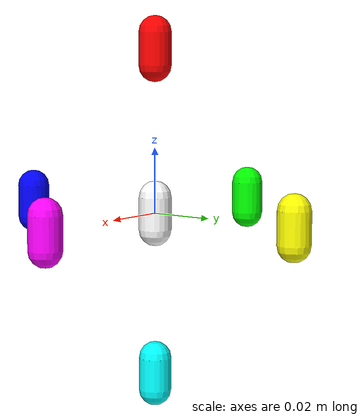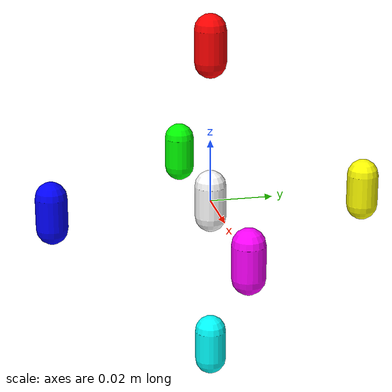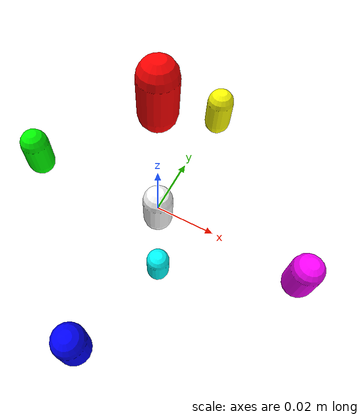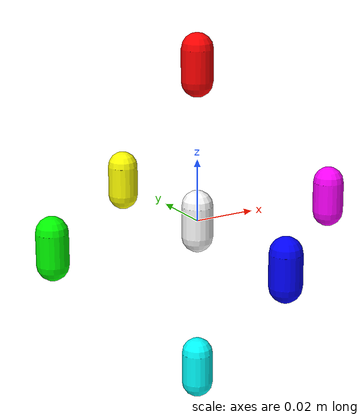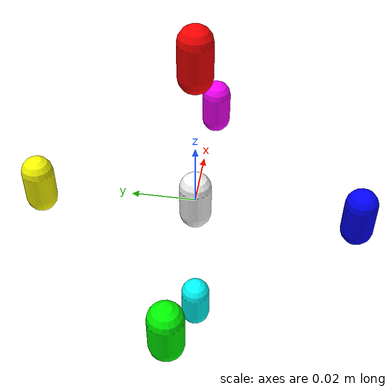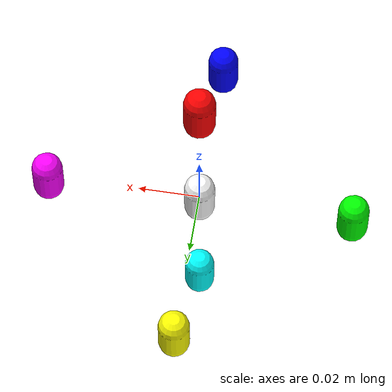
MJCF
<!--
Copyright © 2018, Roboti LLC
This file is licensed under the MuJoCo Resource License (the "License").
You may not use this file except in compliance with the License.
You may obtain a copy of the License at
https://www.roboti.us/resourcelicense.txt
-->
<mujoco>

    <statistic extent="2" meansize=".05"/>

    <option timestep="0.005" solver="Newton" iterations="30" tolerance="1e-10" jacobian="sparse" cone="pyramidal"/>

    <visual>
        <rgba haze="0.15 0.25 0.35 1"/>
        <quality shadowsize="2048"/>
		<global ipd="-0.068"/>
        <map stiffness="700" shadowscale="0.5" fogstart="10" fogend="15" zfar="40" haze="0.3"/>
    </visual>

    <asset>
        <texture type="skybox" builtin="gradient" rgb1="0 0 0" rgb2="0 0 0" width="512" height="512"/>
        <texture name="texplane" type="2d" builtin="checker" rgb1=".2 .3 .4" rgb2=".1 0.15 0.2"
            width="512" height="512" mark="cross" markrgb=".8 .8 .8"/>

        <material name="matplane" rgba="0 0 0 0"/>
		<material name="uppill" rgba="1 0 0 1"/>
		<material name="downpill" rgba="0 1 1 1"/>
		<material name="leftpill" rgba="0 1 0 1"/>
		<material name="rightpill" rgba="1 0 1 1"/>
		<material name="inpill" rgba="0 0 1 1"/>
		<material name="outpill" rgba="1 1 0 1"/>
		<material name="centerpill" rgba="1 1 1 1"/>
    </asset>

    <worldbody>
        <light directional="true" diffuse=".4 .4 .4" specular="0.1 0.1 0.1" pos="0 0 5.0" dir="0 0 -1" castshadow="false"/>
        <light directional="true" diffuse=".6 .6 .6" specular="0.2 0.2 0.2" pos="0 0 4" dir="0 0 -1"/>

        <geom name="ground" type="plane" size="0 0 1" pos="0 0 0" quat="1 0 0 0" material="matplane" condim="1"/>

        <body mocap="true" pos="0 0 0" zaxis="0 0 1">
            <geom type="capsule" size=".005 .005" material="centerpill" group="1" condim="1"/>
        </body>
		<body mocap="true" pos="0 0.05 0" zaxis="0 0 1">
            <geom type="capsule" size=".005 .005" material="outpill" group="1" condim="1"/>
        </body>
		<body mocap="true" pos="0 -0.05 0" zaxis="0 0 1">
            <geom type="capsule" size=".005 .005" material="inpill" group="1" condim="1"/>
        </body>
		<body mocap="true" pos="-0.05 0 0" zaxis="0 0 1">
            <geom type="capsule" size=".005 .005" material="leftpill" group="1" condim="1"/>
        </body>
		<body mocap="true" pos="0.05 0 0" zaxis="0 0 1">
            <geom type="capsule" size=".005 .005" material="rightpill" group="1" condim="1"/>
        </body>
		<body mocap="true" pos="0 0 -0.05" zaxis="0 0 1">
            <geom type="capsule" size=".005 .005" material="downpill" group="1" condim="1"/>
        </body>
		<body mocap="true" pos="0 0 0.05" zaxis="0 0 1">
            <geom type="capsule" size=".005 .005" material="uppill" group="1" condim="1"/>
        </body>

    </worldbody>
</mujoco>
